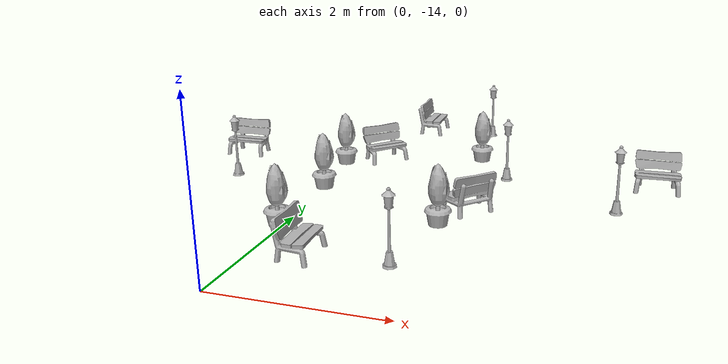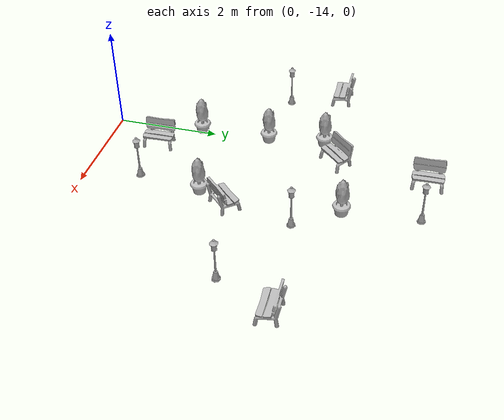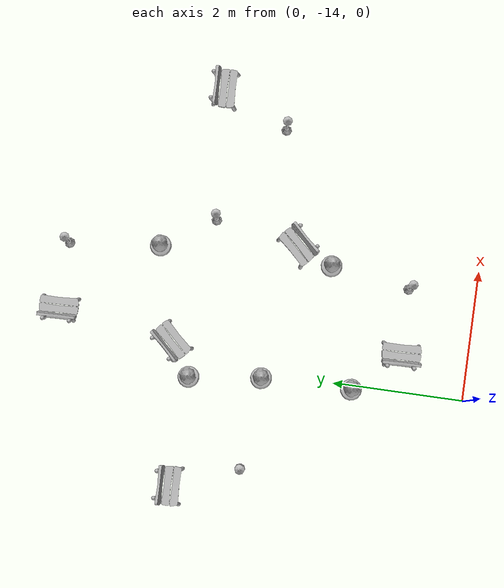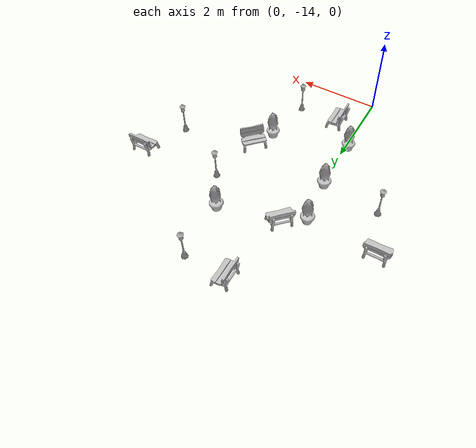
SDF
<?xml version="1.0" ?>
<sdf version="1.6">
  <model name="parkbench">
    <pose>0 0 0 0 0 0</pose>
    <static>true</static>
    <link name="body">
      <visual name="visual">
        <geometry>
          <mesh>
            <uri>model://parkbench/meshes/parkbench.dae</uri>
            <scale>0.0035 0.0035 0.0035</scale>
          </mesh>
        </geometry>
      </visual>
      <collision name="collision">
        <geometry>
          <mesh>
            <uri>model://parkbench/meshes/parkbench.dae</uri>
            <scale>0.0035 0.0035 0.0035</scale>
          </mesh>
        </geometry>
      </collision>
    </link>
  </model>
</sdf>
